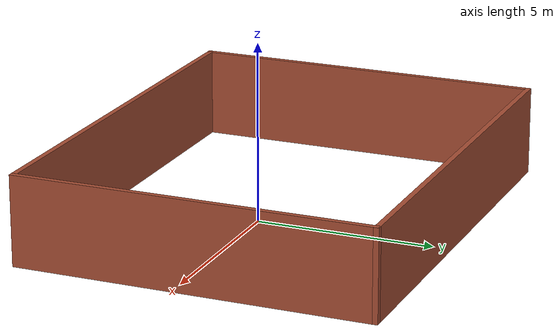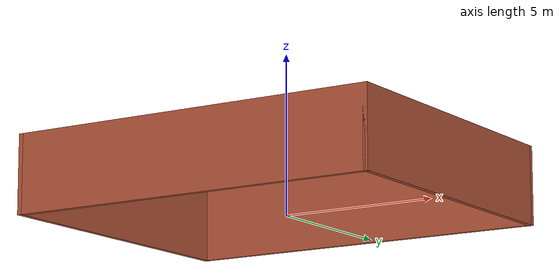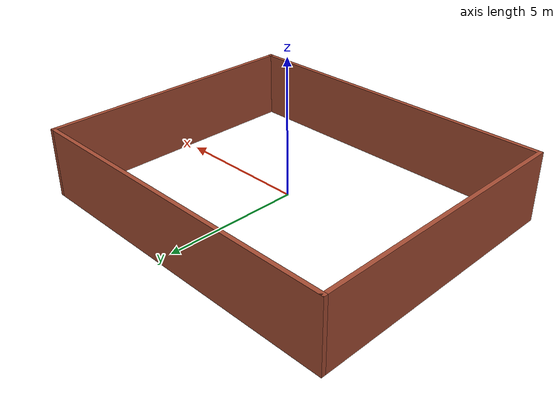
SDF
<?xml version='1.0'?>
<sdf version='1.6'>
  <model name='softserve_square'>
    <pose frame=''>-0.607544 0.509212 0 0 -0 0</pose>
    <link name='Wall_5'>
      <collision name='Wall_5_Collision'>
        <geometry>
          <box>
            <size>10 0.15 2.5</size>
          </box>
        </geometry>
        <pose frame=''>0 0 1.25 0 -0 0</pose>
      </collision>
      <visual name='Wall_5_Visual'>
        <pose frame=''>0 0 1.25 0 -0 0</pose>
        <geometry>
          <box>
            <size>10 0.15 2.5</size>
          </box>
        </geometry>
        <material>
          <script>
            <uri>file://media/materials/scripts/gazebo.material</uri>
            <name>Gazebo/Bricks</name>
          </script>
          <ambient>1 1 1 1</ambient>
        </material>
        <meta>
          <layer>0</layer>
        </meta>
      </visual>
      <pose frame=''>-6.05 0 0 0 -0 -1.5708</pose>
    </link>
    <link name='Wall_6'>
      <collision name='Wall_6_Collision'>
        <geometry>
          <box>
            <size>12.25 0.15 2.5</size>
          </box>
        </geometry>
        <pose frame=''>0 0 1.25 0 -0 0</pose>
      </collision>
      <visual name='Wall_6_Visual'>
        <pose frame=''>0 0 1.25 0 -0 0</pose>
        <geometry>
          <box>
            <size>12.25 0.15 2.5</size>
          </box>
        </geometry>
        <material>
          <script>
            <uri>file://media/materials/scripts/gazebo.material</uri>
            <name>Gazebo/Bricks</name>
          </script>
          <ambient>1 1 1 1</ambient>
        </material>
        <meta>
          <layer>0</layer>
        </meta>
      </visual>
      <pose frame=''>-0 -4.925 0 0 -0 0</pose>
    </link>
    <link name='Wall_7'>
      <collision name='Wall_7_Collision'>
        <geometry>
          <box>
            <size>10 0.15 2.5</size>
          </box>
        </geometry>
        <pose frame=''>0 0 1.25 0 -0 0</pose>
      </collision>
      <visual name='Wall_7_Visual'>
        <pose frame=''>0 0 1.25 0 -0 0</pose>
        <geometry>
          <box>
            <size>10 0.15 2.5</size>
          </box>
        </geometry>
        <material>
          <script>
            <uri>file://media/materials/scripts/gazebo.material</uri>
            <name>Gazebo/Bricks</name>
          </script>
          <ambient>1 1 1 1</ambient>
        </material>
        <meta>
          <layer>0</layer>
        </meta>
      </visual>
      <pose frame=''>6.05 0 0 0 -0 1.5708</pose>
    </link>
    <link name='Wall_8'>
      <collision name='Wall_8_Collision'>
        <geometry>
          <box>
            <size>12.25 0.15 2.5</size>
          </box>
        </geometry>
        <pose frame=''>0 0 1.25 0 -0 0</pose>
      </collision>
      <visual name='Wall_8_Visual'>
        <pose frame=''>0 0 1.25 0 -0 0</pose>
        <geometry>
          <box>
            <size>12.25 0.15 2.5</size>
          </box>
        </geometry>
        <material>
          <script>
            <uri>file://media/materials/scripts/gazebo.material</uri>
            <name>Gazebo/Bricks</name>
          </script>
          <ambient>1 1 1 1</ambient>
        </material>
        <meta>
          <layer>0</layer>
        </meta>
      </visual>
      <pose frame=''>-0 4.925 0 0 -0 3.14159</pose>
    </link>
    <static>1</static>
  </model>
</sdf>
